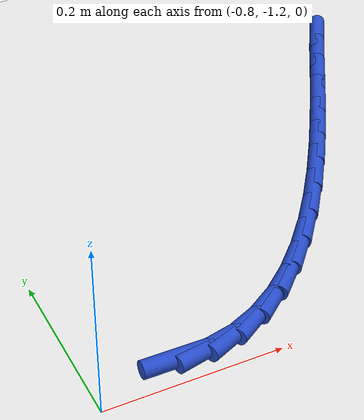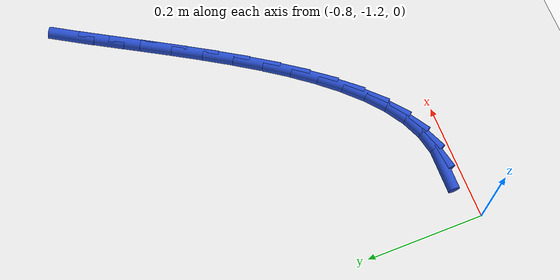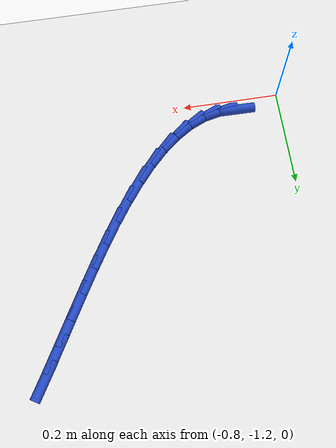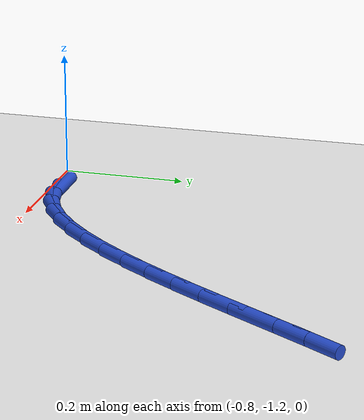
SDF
<sdf version="1.6">
 <world name="default">
  <model name="ground_plane">
   <static>1</static>
   <link name="link">
    <collision name="collision">
     <geometry><plane><normal>0 0 1</normal><size>100 100</size></plane></geometry>
     <surface><friction><ode><mu>100</mu><mu2>50</mu2></ode></friction></surface>
    </collision>
    <visual name="visual">
     <cast_shadows>0</cast_shadows>
     <geometry><plane><normal>0 0 1</normal><size>100 100</size></plane></geometry>
     <material>
      <script><uri>file://media/materials/scripts/gazebo.material</uri><name>Gazebo/WhiteGlow</name></script>
     </material>
    </visual>
   </link>
  </model>
  <model name="line">
   <link name="link_148">
    <pose>-0.7059799261828454 -1.1747237395684986 0.01 0 1.57 -0.006933143530670947</pose>
    <collision name="collision">
     <geometry><cylinder><radius>0.01</radius><length>0.08</length></cylinder></geometry>
    </collision>
    <visual name="visual">
     <material>
      <script><name>Gazebo/Blue</name><uri>file://media/materials/scripts/gazebo.material</uri></script>
     </material>
     <geometry><cylinder><radius>0.01</radius><length>0.08</length></cylinder></geometry>
    </visual>
   </link>
   <link name="link_149">
    <pose>-0.6713208331702369 -1.1749640398853005 0.01 0 1.57 0.21881523441450107</pose>
    <collision name="collision">
     <geometry><cylinder><radius>0.01</radius><length>0.08</length></cylinder></geometry>
    </collision>
    <visual name="visual">
     <material>
      <script><name>Gazebo/Blue</name><uri>file://media/materials/scripts/gazebo.material</uri></script>
     </material>
     <geometry><cylinder><radius>0.01</radius><length>0.08</length></cylinder></geometry>
    </visual>
   </link>
   <link name="link_150">
    <pose>-0.6374184070450023 -1.1674249627919753 0.01 0 1.57 0.4151249528222566</pose>
    <collision name="collision">
     <geometry><cylinder><radius>0.01</radius><length>0.08</length></cylinder></geometry>
    </collision>
    <visual name="visual">
     <material>
      <script><name>Gazebo/Blue</name><uri>file://media/materials/scripts/gazebo.material</uri></script>
     </material>
     <geometry><cylinder><radius>0.01</radius><length>0.08</length></cylinder></geometry>
    </visual>
   </link>
   <link name="link_151">
    <pose>-0.6042521672021777 -1.1528073426004637 0.01 0 1.57 0.5742597460319578</pose>
    <collision name="collision">
     <geometry><cylinder><radius>0.01</radius><length>0.08</length></cylinder></geometry>
    </collision>
    <visual name="visual">
     <material>
      <script><name>Gazebo/Blue</name><uri>file://media/materials/scripts/gazebo.material</uri></script>
     </material>
     <geometry><cylinder><radius>0.01</radius><length>0.08</length></cylinder></geometry>
    </visual>
   </link>
   <link name="link_152">
    <pose>-0.5718016330367977 -1.131812013622704 0.01 0 1.57 0.6986181668995763</pose>
    <collision name="collision">
     <geometry><cylinder><radius>0.01</radius><length>0.08</length></cylinder></geometry>
    </collision>
    <visual name="visual">
     <material>
      <script><name>Gazebo/Blue</name><uri>file://media/materials/scripts/gazebo.material</uri></script>
     </material>
     <geometry><cylinder><radius>0.01</radius><length>0.08</length></cylinder></geometry>
    </visual>
   </link>
   <link name="link_153">
    <pose>-0.540046323943898 -1.1051398101706362 0.01 0 1.57 0.7944476497267052</pose>
    <collision name="collision">
     <geometry><cylinder><radius>0.01</radius><length>0.08</length></cylinder></geometry>
    </collision>
    <visual name="visual">
     <material>
      <script><name>Gazebo/Blue</name><uri>file://media/materials/scripts/gazebo.material</uri></script>
     </material>
     <geometry><cylinder><radius>0.01</radius><length>0.08</length></cylinder></geometry>
    </visual>
   </link>
   <link name="link_154">
    <pose>-0.5089657593185137 -1.0734915665562004 0.01 0 1.57 0.8680604523208322</pose>
    <collision name="collision">
     <geometry><cylinder><radius>0.01</radius><length>0.08</length></cylinder></geometry>
    </collision>
    <visual name="visual">
     <material>
      <script><name>Gazebo/Blue</name><uri>file://media/materials/scripts/gazebo.material</uri></script>
     </material>
     <geometry><cylinder><radius>0.01</radius><length>0.08</length></cylinder></geometry>
    </visual>
   </link>
   <link name="link_155">
    <pose>-0.4785394585556813 -1.0375681170913362 0.01 0 1.57 0.924560009585295</pose>
    <collision name="collision">
     <geometry><cylinder><radius>0.01</radius><length>0.08</length></cylinder></geometry>
    </collision>
    <visual name="visual">
     <material>
      <script><name>Gazebo/Blue</name><uri>file://media/materials/scripts/gazebo.material</uri></script>
     </material>
     <geometry><cylinder><radius>0.01</radius><length>0.08</length></cylinder></geometry>
    </visual>
   </link>
   <link name="link_156">
    <pose>-0.44874694105043583 -0.9980702960879838 0.01 0 1.57 0.9677256322817104</pose>
    <collision name="collision">
     <geometry><cylinder><radius>0.01</radius><length>0.08</length></cylinder></geometry>
    </collision>
    <visual name="visual">
     <material>
      <script><name>Gazebo/Blue</name><uri>file://media/materials/scripts/gazebo.material</uri></script>
     </material>
     <geometry><cylinder><radius>0.01</radius><length>0.08</length></cylinder></geometry>
    </visual>
   </link>
   <link name="link_157">
    <pose>-0.4195677261978126 -0.9556989378580821 0.01 0 1.57 1.0002387939090238</pose>
    <collision name="collision">
     <geometry><cylinder><radius>0.01</radius><length>0.08</length></cylinder></geometry>
    </collision>
    <visual name="visual">
     <material>
      <script><name>Gazebo/Blue</name><uri>file://media/materials/scripts/gazebo.material</uri></script>
     </material>
     <geometry><cylinder><radius>0.01</radius><length>0.08</length></cylinder></geometry>
    </visual>
   </link>
   <link name="link_158">
    <pose>-0.3909813333928469 -0.9111548767135713 0.01 0 1.57 1.023938433500169</pose>
    <collision name="collision">
     <geometry><cylinder><radius>0.01</radius><length>0.08</length></cylinder></geometry>
    </collision>
    <visual name="visual">
     <material>
      <script><name>Gazebo/Blue</name><uri>file://media/materials/scripts/gazebo.material</uri></script>
     </material>
     <geometry><cylinder><radius>0.01</radius><length>0.08</length></cylinder></geometry>
    </visual>
   </link>
   <link name="link_159">
    <pose>-0.36296728203057377 -0.8651389469663897 0.01 0 1.57 1.0400184285843854</pose>
    <collision name="collision">
     <geometry><cylinder><radius>0.01</radius><length>0.08</length></cylinder></geometry>
    </collision>
    <visual name="visual">
     <material>
      <script><name>Gazebo/Blue</name><uri>file://media/materials/scripts/gazebo.material</uri></script>
     </material>
     <geometry><cylinder><radius>0.01</radius><length>0.08</length></cylinder></geometry>
    </visual>
   </link>
   <link name="link_160">
    <pose>-0.3355050915060299 -0.8183519829284794 0.01 0 1.57 1.04915547908374</pose>
    <collision name="collision">
     <geometry><cylinder><radius>0.01</radius><length>0.08</length></cylinder></geometry>
    </collision>
    <visual name="visual">
     <material>
      <script><name>Gazebo/Blue</name><uri>file://media/materials/scripts/gazebo.material</uri></script>
     </material>
     <geometry><cylinder><radius>0.01</radius><length>0.08</length></cylinder></geometry>
    </visual>
   </link>
   <link name="link_161">
    <pose>-0.3085742812142501 -0.771494818911779 0.01 0 1.57 1.0515727408550313</pose>
    <collision name="collision">
     <geometry><cylinder><radius>0.01</radius><length>0.08</length></cylinder></geometry>
    </collision>
    <visual name="visual">
     <material>
      <script><name>Gazebo/Blue</name><uri>file://media/materials/scripts/gazebo.material</uri></script>
     </material>
     <geometry><cylinder><radius>0.01</radius><length>0.08</length></cylinder></geometry>
    </visual>
   </link>
   <link name="link_162">
    <pose>-0.2821543705502697 -0.7252682892282278 0.01 0 1.57 1.047041934498307</pose>
    <collision name="collision">
     <geometry><cylinder><radius>0.01</radius><length>0.08</length></cylinder></geometry>
    </collision>
    <visual name="visual">
     <material>
      <script><name>Gazebo/Blue</name><uri>file://media/materials/scripts/gazebo.material</uri></script>
     </material>
     <geometry><cylinder><radius>0.01</radius><length>0.08</length></cylinder></geometry>
    </visual>
   </link>
   <link name="link_163">
    <pose>-0.2562248789091244 -0.6803732281897661 0.01 0 1.57 1.034821693259659</pose>
    <collision name="collision">
     <geometry><cylinder><radius>0.01</radius><length>0.08</length></cylinder></geometry>
    </collision>
    <visual name="visual">
     <material>
      <script><name>Gazebo/Blue</name><uri>file://media/materials/scripts/gazebo.material</uri></script>
     </material>
     <geometry><cylinder><radius>0.01</radius><length>0.08</length></cylinder></geometry>
    </visual>
   </link>
  </model>
 </world>
</sdf>
